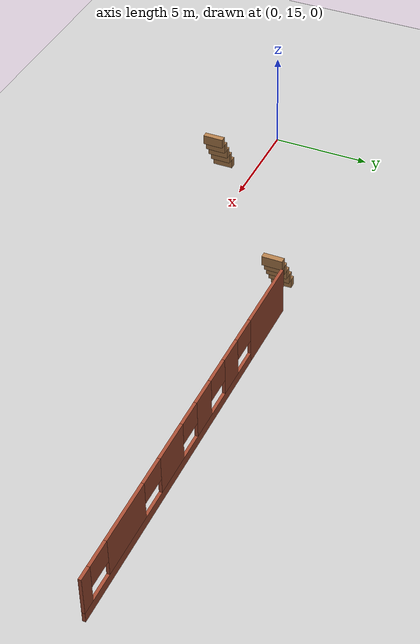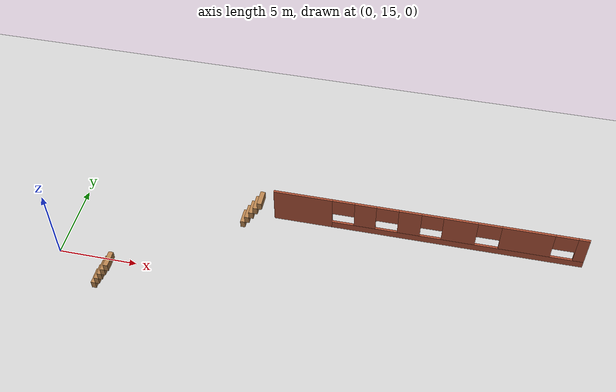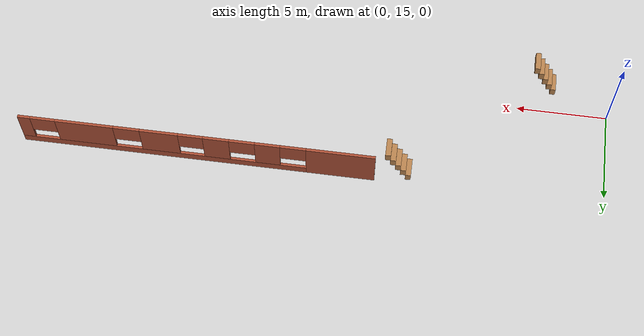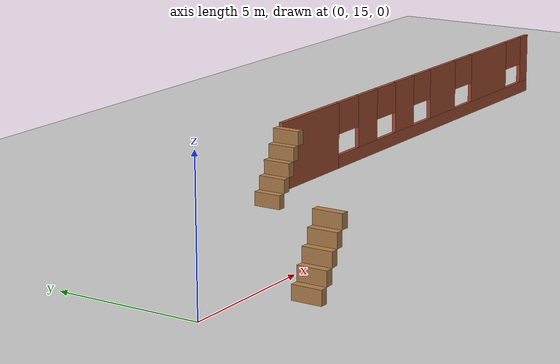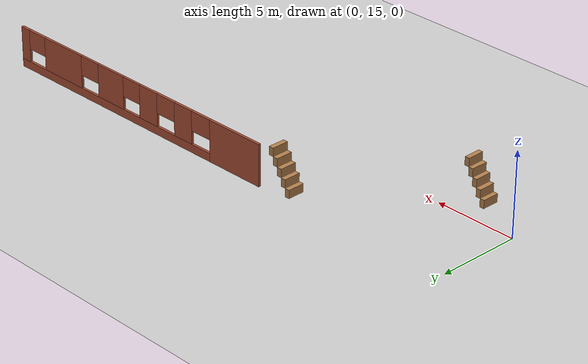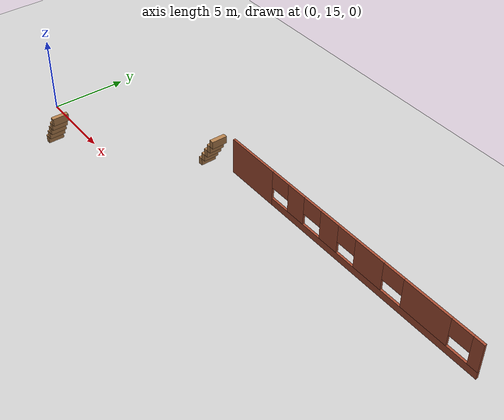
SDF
<sdf version="1.6">
 <world name="default">
  <model name="ground_plane">
   <static>1</static>
   <link name="link">
    <collision name="collision">
     <geometry><plane><normal>0 0 1</normal><size>100 100</size></plane></geometry>
     <surface><friction><ode><mu>100</mu><mu2>50</mu2></ode></friction></surface>
    </collision>
    <visual name="visual">
     <cast_shadows>0</cast_shadows>
     <geometry><plane><normal>0 0 1</normal><size>100 100</size></plane></geometry>
     <material>
      <script><uri>file://media/materials/scripts/gazebo.material</uri><name>Gazebo/Grey</name></script>
     </material>
    </visual>
   </link>
  </model>
  <model name="CVSSP">
   <pose>23.8714 24.094 0 0 -0 0</pose>
   <link name="Stairs_11">
    <visual name="Stairs_11_Visual_0">
     <pose>-13.1847 -4.32692 0.25 0 -0 1.5708</pose>
     <geometry><box><size>1.03 0.296708 0.5</size></box></geometry>
     <material>
      <script><uri>file://media/materials/scripts/gazebo.material</uri><name>Gazebo/Wood</name></script>
      <ambient>1 1 1 1</ambient>
     </material>
    </visual>
    <collision name="Stairs_11_Collision_0">
     <geometry><box><size>1.03 0.296708 0.5</size></box></geometry>
     <pose>-13.1847 -4.32692 0.25 0 -0 1.5708</pose>
    </collision>
    <visual name="Stairs_11_Visual_1">
     <pose>-12.888 -4.32692 0.75 0 -0 1.5708</pose>
     <geometry><box><size>1.03 0.296708 0.5</size></box></geometry>
     <material>
      <script><uri>file://media/materials/scripts/gazebo.material</uri><name>Gazebo/Wood</name></script>
      <ambient>1 1 1 1</ambient>
     </material>
    </visual>
    <collision name="Stairs_11_Collision_1">
     <geometry><box><size>1.03 0.296708 0.5</size></box></geometry>
     <pose>-12.888 -4.32692 0.75 0 -0 1.5708</pose>
    </collision>
    <visual name="Stairs_11_Visual_2">
     <pose>-12.5913 -4.32692 1.25 0 -0 1.5708</pose>
     <geometry><box><size>1.03 0.296708 0.5</size></box></geometry>
     <material>
      <script><uri>file://media/materials/scripts/gazebo.material</uri><name>Gazebo/Wood</name></script>
      <ambient>1 1 1 1</ambient>
     </material>
    </visual>
    <collision name="Stairs_11_Collision_2">
     <geometry><box><size>1.03 0.296708 0.5</size></box></geometry>
     <pose>-12.5913 -4.32692 1.25 0 -0 1.5708</pose>
    </collision>
    <visual name="Stairs_11_Visual_3">
     <pose>-12.2946 -4.32692 1.75 0 -0 1.5708</pose>
     <geometry><box><size>1.03 0.296708 0.5</size></box></geometry>
     <material>
      <script><uri>file://media/materials/scripts/gazebo.material</uri><name>Gazebo/Wood</name></script>
      <ambient>1 1 1 1</ambient>
     </material>
    </visual>
    <collision name="Stairs_11_Collision_3">
     <geometry><box><size>1.03 0.296708 0.5</size></box></geometry>
     <pose>-12.2946 -4.32692 1.75 0 -0 1.5708</pose>
    </collision>
    <visual name="Stairs_11_Visual_4">
     <pose>-11.9979 -4.32692 2.25 0 -0 1.5708</pose>
     <geometry><box><size>1.03 0.296708 0.5</size></box></geometry>
     <material>
      <script><uri>file://media/materials/scripts/gazebo.material</uri><name>Gazebo/Wood</name></script>
      <ambient>1 1 1 1</ambient>
     </material>
    </visual>
    <collision name="Stairs_11_Collision_4">
     <geometry><box><size>1.03 0.296708 0.5</size></box></geometry>
     <pose>-11.9979 -4.32692 2.25 0 -0 1.5708</pose>
    </collision>
   </link>
   <link name="Stairs_14">
    <visual name="Stairs_14_Visual_0">
     <pose>-20.7753 -10.8092 0.25 0 -0 1.5708</pose>
     <geometry><box><size>1.035 0.2838 0.5</size></box></geometry>
     <material>
      <script><uri>file://media/materials/scripts/gazebo.material</uri><name>Gazebo/Wood</name></script>
      <ambient>1 1 1 1</ambient>
     </material>
    </visual>
    <collision name="Stairs_14_Collision_0">
     <geometry><box><size>1.035 0.2838 0.5</size></box></geometry>
     <pose>-20.7753 -10.8092 0.25 0 -0 1.5708</pose>
    </collision>
    <visual name="Stairs_14_Visual_1">
     <pose>-20.4915 -10.8092 0.75 0 -0 1.5708</pose>
     <geometry><box><size>1.035 0.2838 0.5</size></box></geometry>
     <material>
      <script><uri>file://media/materials/scripts/gazebo.material</uri><name>Gazebo/Wood</name></script>
      <ambient>1 1 1 1</ambient>
     </material>
    </visual>
    <collision name="Stairs_14_Collision_1">
     <geometry><box><size>1.035 0.2838 0.5</size></box></geometry>
     <pose>-20.4915 -10.8092 0.75 0 -0 1.5708</pose>
    </collision>
    <visual name="Stairs_14_Visual_2">
     <pose>-20.2077 -10.8092 1.25 0 -0 1.5708</pose>
     <geometry><box><size>1.035 0.2838 0.5</size></box></geometry>
     <material>
      <script><uri>file://media/materials/scripts/gazebo.material</uri><name>Gazebo/Wood</name></script>
      <ambient>1 1 1 1</ambient>
     </material>
    </visual>
    <collision name="Stairs_14_Collision_2">
     <geometry><box><size>1.035 0.2838 0.5</size></box></geometry>
     <pose>-20.2077 -10.8092 1.25 0 -0 1.5708</pose>
    </collision>
    <visual name="Stairs_14_Visual_3">
     <pose>-19.9239 -10.8092 1.75 0 -0 1.5708</pose>
     <geometry><box><size>1.035 0.2838 0.5</size></box></geometry>
     <material>
      <script><uri>file://media/materials/scripts/gazebo.material</uri><name>Gazebo/Wood</name></script>
      <ambient>1 1 1 1</ambient>
     </material>
    </visual>
    <collision name="Stairs_14_Collision_3">
     <geometry><box><size>1.035 0.2838 0.5</size></box></geometry>
     <pose>-19.9239 -10.8092 1.75 0 -0 1.5708</pose>
    </collision>
    <visual name="Stairs_14_Visual_4">
     <pose>-19.6401 -10.8092 2.25 0 -0 1.5708</pose>
     <geometry><box><size>1.035 0.2838 0.5</size></box></geometry>
     <material>
      <script><uri>file://media/materials/scripts/gazebo.material</uri><name>Gazebo/Wood</name></script>
      <ambient>1 1 1 1</ambient>
     </material>
    </visual>
    <collision name="Stairs_14_Collision_4">
     <geometry><box><size>1.035 0.2838 0.5</size></box></geometry>
     <pose>-19.6401 -10.8092 2.25 0 -0 1.5708</pose>
    </collision>
   </link>
   <link name="Wall_464">
    <pose>-1.6141 -3.60482 0 0 -0 0</pose>
    <visual name="Wall_464_Visual_0">
     <pose>-7.8743 0 1.25 0 -0 0</pose>
     <geometry><box><size>3.7514 0.15 2.5</size></box></geometry>
     <material>
      <script><uri>file://media/materials/scripts/gazebo.material</uri><name>Gazebo/Bricks</name></script>
      <ambient>1 1 1 1</ambient>
     </material>
    </visual>
    <collision name="Wall_464_Collision_0">
     <geometry><box><size>3.7514 0.15 2.5</size></box></geometry>
     <pose>-7.8743 0 1.25 0 -0 0</pose>
    </collision>
    <visual name="Wall_464_Visual_1">
     <pose>1.8757 0 0.25 0 -0 0</pose>
     <geometry><box><size>15.7486 0.15 0.5</size></box></geometry>
     <material>
      <script><uri>file://media/materials/scripts/gazebo.material</uri><name>Gazebo/Bricks</name></script>
      <ambient>1 1 1 1</ambient>
     </material>
    </visual>
    <collision name="Wall_464_Collision_1">
     <geometry><box><size>15.7486 0.15 0.5</size></box></geometry>
     <pose>1.8757 0 0.25 0 -0 0</pose>
    </collision>
    <visual name="Wall_464_Visual_2">
     <pose>-3.89918 0 1.5 0 -0 0</pose>
     <geometry><box><size>1.36967 0.15 2</size></box></geometry>
     <material>
      <script><uri>file://media/materials/scripts/gazebo.material</uri><name>Gazebo/Bricks</name></script>
      <ambient>1 1 1 1</ambient>
     </material>
    </visual>
    <collision name="Wall_464_Collision_2">
     <geometry><box><size>1.36967 0.15 2</size></box></geometry>
     <pose>-3.89918 0 1.5 0 -0 0</pose>
    </collision>
    <visual name="Wall_464_Visual_3">
     <pose>-1.10672 0 1.5 0 -0 0</pose>
     <geometry><box><size>1.42282 0.15 2</size></box></geometry>
     <material>
      <script><uri>file://media/materials/scripts/gazebo.material</uri><name>Gazebo/Bricks</name></script>
      <ambient>1 1 1 1</ambient>
     </material>
    </visual>
    <collision name="Wall_464_Collision_3">
     <geometry><box><size>1.42282 0.15 2</size></box></geometry>
     <pose>-1.10672 0 1.5 0 -0 0</pose>
    </collision>
    <visual name="Wall_464_Visual_4">
     <pose>2.00621 0 1.5 0 -0 0</pose>
     <geometry><box><size>2.10134 0.15 2</size></box></geometry>
     <material>
      <script><uri>file://media/materials/scripts/gazebo.material</uri><name>Gazebo/Bricks</name></script>
      <ambient>1 1 1 1</ambient>
     </material>
    </visual>
    <collision name="Wall_464_Collision_4">
     <geometry><box><size>2.10134 0.15 2</size></box></geometry>
     <pose>2.00621 0 1.5 0 -0 0</pose>
    </collision>
    <visual name="Wall_464_Visual_5">
     <pose>6.09709 0 1.5 0 -0 0</pose>
     <geometry><box><size>3.19078 0.15 2</size></box></geometry>
     <material>
      <script><uri>file://media/materials/scripts/gazebo.material</uri><name>Gazebo/Bricks</name></script>
      <ambient>1 1 1 1</ambient>
     </material>
    </visual>
    <collision name="Wall_464_Collision_5">
     <geometry><box><size>3.19078 0.15 2</size></box></geometry>
     <pose>6.09709 0 1.5 0 -0 0</pose>
    </collision>
    <visual name="Wall_464_Visual_6">
     <pose>9.40621 0 1.5 0 -0 0</pose>
     <geometry><box><size>0.687583 0.15 2</size></box></geometry>
     <material>
      <script><uri>file://media/materials/scripts/gazebo.material</uri><name>Gazebo/Bricks</name></script>
      <ambient>1 1 1 1</ambient>
     </material>
    </visual>
    <collision name="Wall_464_Collision_6">
     <geometry><box><size>0.687583 0.15 2</size></box></geometry>
     <pose>9.40621 0 1.5 0 -0 0</pose>
    </collision>
    <visual name="Wall_464_Visual_7">
     <pose>-5.29131 0 1.9 0 -0 0</pose>
     <geometry><box><size>1.41459 0.15 1.2</size></box></geometry>
     <material>
      <script><uri>file://media/materials/scripts/gazebo.material</uri><name>Gazebo/Bricks</name></script>
      <ambient>1 1 1 1</ambient>
     </material>
    </visual>
    <collision name="Wall_464_Collision_7">
     <geometry><box><size>1.41459 0.15 1.2</size></box></geometry>
     <pose>-5.29131 0 1.9 0 -0 0</pose>
    </collision>
    <visual name="Wall_464_Visual_8">
     <pose>-2.51624 0 1.9 0 -0 0</pose>
     <geometry><box><size>1.39621 0.15 1.2</size></box></geometry>
     <material>
      <script><uri>file://media/materials/scripts/gazebo.material</uri><name>Gazebo/Bricks</name></script>
      <ambient>1 1 1 1</ambient>
     </material>
    </visual>
    <collision name="Wall_464_Collision_8">
     <geometry><box><size>1.39621 0.15 1.2</size></box></geometry>
     <pose>-2.51624 0 1.9 0 -0 0</pose>
    </collision>
    <visual name="Wall_464_Visual_9">
     <pose>0.280117 0 1.9 0 -0 0</pose>
     <geometry><box><size>1.35085 0.15 1.2</size></box></geometry>
     <material>
      <script><uri>file://media/materials/scripts/gazebo.material</uri><name>Gazebo/Bricks</name></script>
      <ambient>1 1 1 1</ambient>
     </material>
    </visual>
    <collision name="Wall_464_Collision_9">
     <geometry><box><size>1.35085 0.15 1.2</size></box></geometry>
     <pose>0.280117 0 1.9 0 -0 0</pose>
    </collision>
    <visual name="Wall_464_Visual_10">
     <pose>3.77929 0 1.9 0 -0 0</pose>
     <geometry><box><size>1.44482 0.15 1.2</size></box></geometry>
     <material>
      <script><uri>file://media/materials/scripts/gazebo.material</uri><name>Gazebo/Bricks</name></script>
      <ambient>1 1 1 1</ambient>
     </material>
    </visual>
    <collision name="Wall_464_Collision_10">
     <geometry><box><size>1.44482 0.15 1.2</size></box></geometry>
     <pose>3.77929 0 1.9 0 -0 0</pose>
    </collision>
    <visual name="Wall_464_Visual_11">
     <pose>8.37745 0 1.9 0 -0 0</pose>
     <geometry><box><size>1.36994 0.15 1.2</size></box></geometry>
     <material>
      <script><uri>file://media/materials/scripts/gazebo.material</uri><name>Gazebo/Bricks</name></script>
      <ambient>1 1 1 1</ambient>
     </material>
    </visual>
    <collision name="Wall_464_Collision_11">
     <geometry><box><size>1.36994 0.15 1.2</size></box></geometry>
     <pose>8.37745 0 1.9 0 -0 0</pose>
    </collision>
   </link>
   <static>1</static>
  </model>
 </world>
</sdf>
